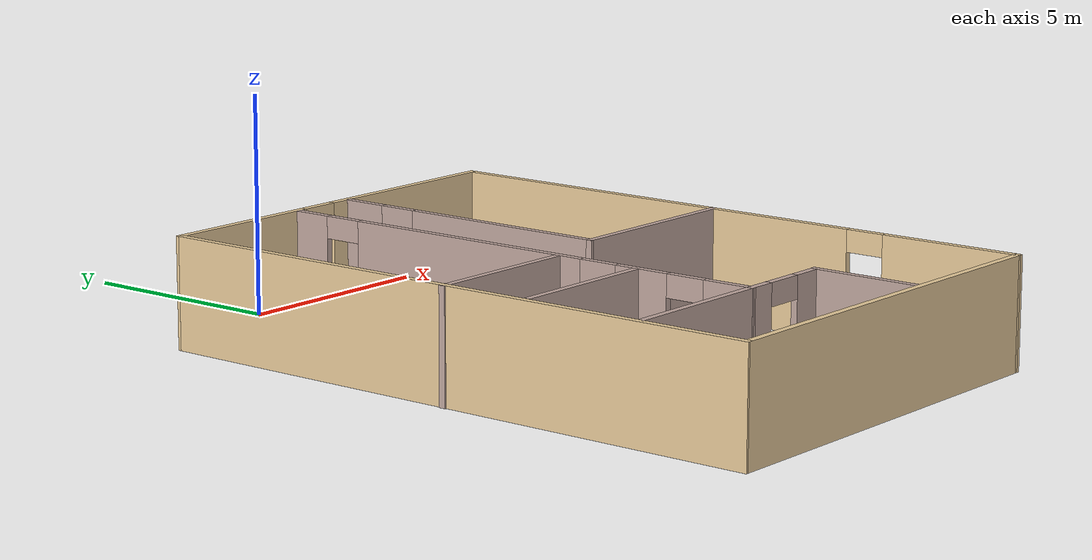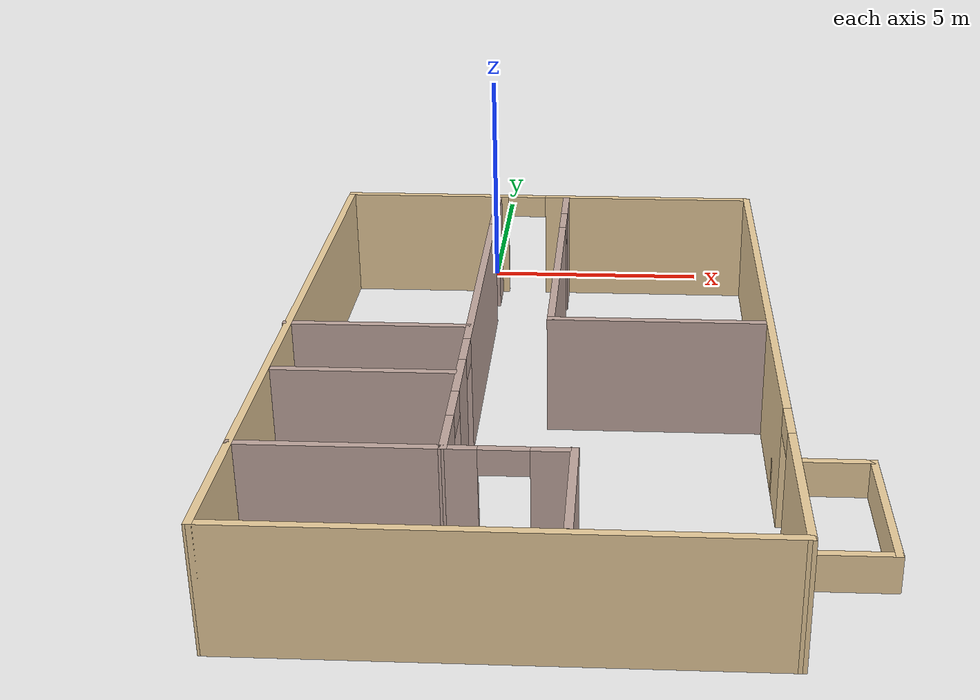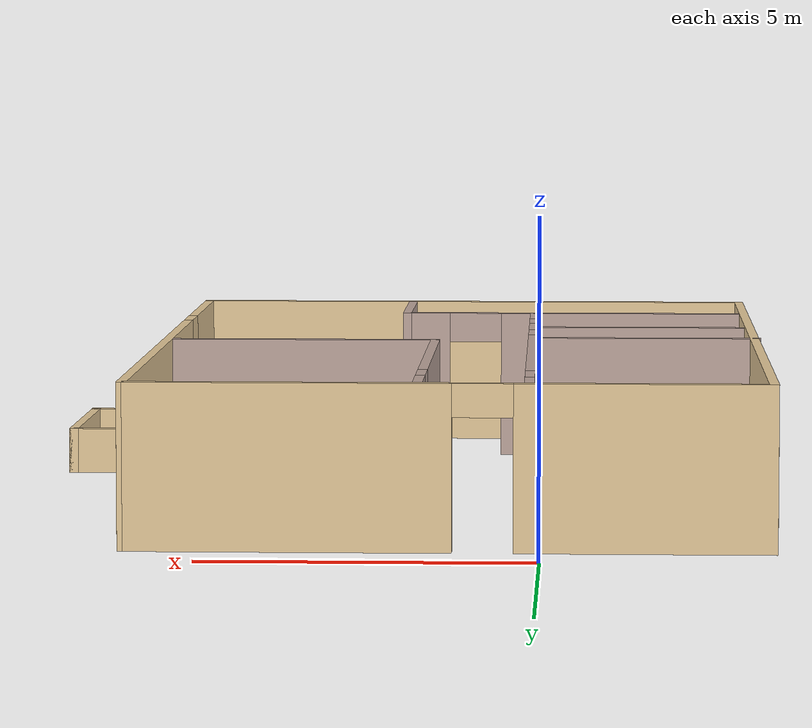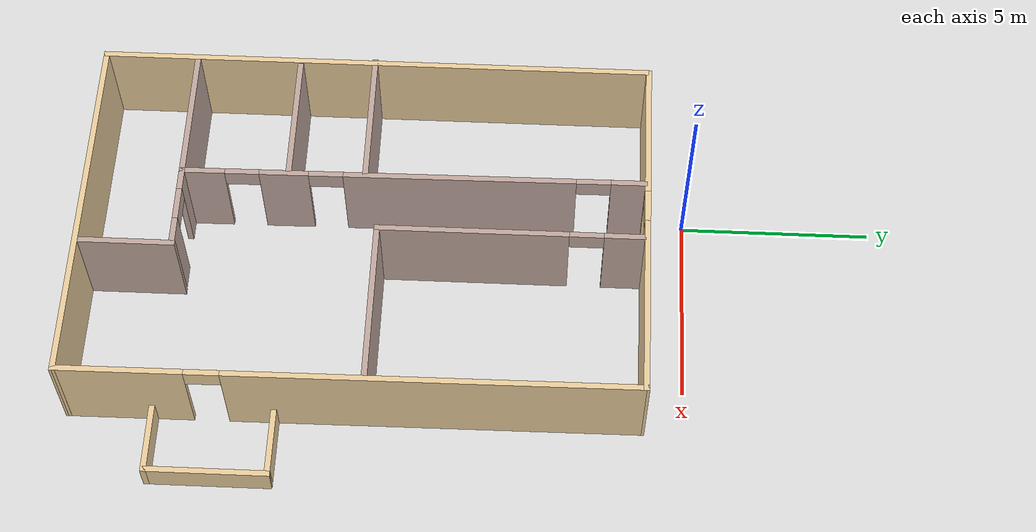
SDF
<?xml version='1.0'?>
<sdf version='1.6'>
  <model name='Building'>
    <pose frame=''>2.29995 -8.39051 0 0 -0 0</pose>
    <link name='Wall_0'>
      <collision name='Wall_0_Collision'>
        <geometry>
          <box>
            <size>14.75 0.15 2.5</size>
          </box>
        </geometry>
        <pose frame=''>0 0 1.25 0 -0 0</pose>
      </collision>
      <visual name='Wall_0_Visual'>
        <pose frame=''>0 0 1.25 0 -0 0</pose>
        <geometry>
          <box>
            <size>14.75 0.15 2.5</size>
          </box>
        </geometry>
        <material>
          <script>
            <uri>file://media/materials/scripts/gazebo.material</uri>
            <name>Gazebo/Grey</name>
          </script>
          <ambient>0.921569 0.807843 0.615686 1</ambient>
        </material>
        <meta>
          <layer>0</layer>
        </meta>
      </visual>
      <pose frame=''>-5.70481 -0.037911 0 0 0 -1.5708</pose>
    </link>
    <link name='Wall_1'>
      <collision name='Wall_1_Collision'>
        <geometry>
          <box>
            <size>9.72533 0.15 2.5</size>
          </box>
        </geometry>
        <pose frame=''>0 0 1.25 0 -0 0</pose>
      </collision>
      <visual name='Wall_1_Visual'>
        <pose frame=''>0 0 1.25 0 -0 0</pose>
        <geometry>
          <box>
            <size>9.72533 0.15 2.5</size>
          </box>
        </geometry>
        <material>
          <script>
            <uri>file://media/materials/scripts/gazebo.material</uri>
            <name>Gazebo/Grey</name>
          </script>
          <ambient>0.921569 0.807843 0.615686 1</ambient>
        </material>
        <meta>
          <layer>0</layer>
        </meta>
      </visual>
      <pose frame=''>-0.870929 -7.33745 0 0 -0 9.7e-05</pose>
    </link>
    <link name='Wall_10'>
      <collision name='Wall_10_Collision'>
        <geometry>
          <box>
            <size>3.75 0.15 2.5</size>
          </box>
        </geometry>
        <pose frame=''>0 0 1.25 0 -0 0</pose>
      </collision>
      <visual name='Wall_10_Visual'>
        <pose frame=''>0 0 1.25 0 -0 0</pose>
        <geometry>
          <box>
            <size>3.75 0.15 2.5</size>
          </box>
        </geometry>
        <material>
          <script>
            <uri>file://media/materials/scripts/gazebo.material</uri>
            <name>Gazebo/Grey</name>
          </script>
          <ambient>0.760784 0.662745 0.627451 1</ambient>
        </material>
        <meta>
          <layer>0</layer>
        </meta>
      </visual>
      <pose frame=''>-3.88937 -4.84832 0 0 -0 3.14159</pose>
    </link>
    <link name='Wall_14'>
      <collision name='Wall_14_Collision'>
        <geometry>
          <box>
            <size>2.5 0.15 2.5</size>
          </box>
        </geometry>
        <pose frame=''>0 0 1.25 0 -0 0</pose>
      </collision>
      <visual name='Wall_14_Visual'>
        <pose frame=''>0 0 1.25 0 -0 0</pose>
        <geometry>
          <box>
            <size>2.5 0.15 2.5</size>
          </box>
        </geometry>
        <material>
          <script>
            <uri>file://media/materials/scripts/gazebo.material</uri>
            <name>Gazebo/Grey</name>
          </script>
          <ambient>0.760784 0.662745 0.627451 1</ambient>
        </material>
        <meta>
          <layer>0</layer>
        </meta>
      </visual>
      <pose frame=''>0.19415 -6.01042 0 0 0 -1.5708</pose>
    </link>
    <link name='Wall_16'>
      <collision name='Wall_16_Collision'>
        <geometry>
          <box>
            <size>4.5 0.15 2.5</size>
          </box>
        </geometry>
        <pose frame=''>0 0 1.25 0 -0 0</pose>
      </collision>
      <visual name='Wall_16_Visual'>
        <pose frame=''>0 0 1.25 0 -0 0</pose>
        <geometry>
          <box>
            <size>4.5 0.15 2.5</size>
          </box>
        </geometry>
        <material>
          <script>
            <uri>file://media/materials/scripts/gazebo.material</uri>
            <name>Gazebo/Grey</name>
          </script>
          <ambient>0.760784 0.662745 0.627451 1</ambient>
        </material>
        <meta>
          <layer>0</layer>
        </meta>
      </visual>
      <pose frame=''>1.67785 0.374679 0 0 -0 0</pose>
    </link>
    <link name='Wall_18'>
      <collision name='Wall_18_Collision'>
        <geometry>
          <box>
            <size>3.5 0.15 2.5</size>
          </box>
        </geometry>
        <pose frame=''>0 0 1.25 0 -0 0</pose>
      </collision>
      <visual name='Wall_18_Visual'>
        <pose frame=''>0 0 1.25 0 -0 0</pose>
        <geometry>
          <box>
            <size>3.5 0.15 2.5</size>
          </box>
        </geometry>
        <material>
          <script>
            <uri>file://media/materials/scripts/gazebo.material</uri>
            <name>Gazebo/Grey</name>
          </script>
          <ambient>0.760784 0.662745 0.627451 1</ambient>
        </material>
        <meta>
          <layer>0</layer>
        </meta>
      </visual>
      <pose frame=''>-3.86495 -2.05872 0 0 -0 3.14159</pose>
    </link>
    <link name='Wall_20'>
      <collision name='Wall_20_Collision'>
        <geometry>
          <box>
            <size>3.75 0.15 2.5</size>
          </box>
        </geometry>
        <pose frame=''>0 0 1.25 0 -0 0</pose>
      </collision>
      <visual name='Wall_20_Visual'>
        <pose frame=''>0 0 1.25 0 -0 0</pose>
        <geometry>
          <box>
            <size>3.75 0.15 2.5</size>
          </box>
        </geometry>
        <material>
          <script>
            <uri>file://media/materials/scripts/gazebo.material</uri>
            <name>Gazebo/Grey</name>
          </script>
          <ambient>0.760784 0.662745 0.627451 1</ambient>
        </material>
        <meta>
          <layer>0</layer>
        </meta>
      </visual>
      <pose frame=''>-3.93705 -0.048521 0 0 -0 3.14159</pose>
    </link>
    <link name='Wall_22'>
      <pose frame=''>-0.991697 -4.84832 0 0 -0 0</pose>
      <visual name='Wall_22_Visual_0'>
        <pose frame=''>-0.794379 0 1.25 0 -0 0</pose>
        <geometry>
          <box>
            <size>0.661242 0.15 2.5</size>
          </box>
        </geometry>
        <material>
          <script>
            <uri>file://media/materials/scripts/gazebo.material</uri>
            <name>Gazebo/Grey</name>
          </script>
          <ambient>0.760784 0.662745 0.627451 1</ambient>
        </material>
        <meta>
          <layer>0</layer>
        </meta>
      </visual>
      <collision name='Wall_22_Collision_0'>
        <geometry>
          <box>
            <size>0.661242 0.15 2.5</size>
          </box>
        </geometry>
        <pose frame=''>-0.794379 0 1.25 0 -0 0</pose>
      </collision>
      <visual name='Wall_22_Visual_1'>
        <pose frame=''>0.780621 0 1.25 0 -0 0</pose>
        <geometry>
          <box>
            <size>0.688758 0.15 2.5</size>
          </box>
        </geometry>
        <material>
          <script>
            <uri>file://media/materials/scripts/gazebo.material</uri>
            <name>Gazebo/Grey</name>
          </script>
          <ambient>0.760784 0.662745 0.627451 1</ambient>
        </material>
        <meta>
          <layer>0</layer>
        </meta>
      </visual>
      <collision name='Wall_22_Collision_1'>
        <geometry>
          <box>
            <size>0.688758 0.15 2.5</size>
          </box>
        </geometry>
        <pose frame=''>0.780621 0 1.25 0 -0 0</pose>
      </collision>
      <visual name='Wall_22_Visual_2'>
        <pose frame=''>-0.013758 0 2.25 0 -0 0</pose>
        <geometry>
          <box>
            <size>0.9 0.15 0.5</size>
          </box>
        </geometry>
        <material>
          <script>
            <uri>file://media/materials/scripts/gazebo.material</uri>
            <name>Gazebo/Grey</name>
          </script>
          <ambient>0.760784 0.662745 0.627451 1</ambient>
        </material>
        <meta>
          <layer>0</layer>
        </meta>
      </visual>
      <collision name='Wall_22_Collision_2'>
        <geometry>
          <box>
            <size>0.9 0.15 0.5</size>
          </box>
        </geometry>
        <pose frame=''>-0.013758 0 2.25 0 -0 0</pose>
      </collision>
    </link>
    <link name='Wall_24'>
      <pose frame=''>-0.49715 3.79968 0 0 -0 1.5708</pose>
      <visual name='Wall_24_Visual_0'>
        <pose frame=''>-0.98817 0 1.25 0 -0 0</pose>
        <geometry>
          <box>
            <size>5.02366 0.15 2.5</size>
          </box>
        </geometry>
        <material>
          <script>
            <uri>file://media/materials/scripts/gazebo.material</uri>
            <name>Gazebo/Grey</name>
          </script>
          <ambient>0.760784 0.662745 0.627451 1</ambient>
        </material>
        <meta>
          <layer>0</layer>
        </meta>
      </visual>
      <collision name='Wall_24_Collision_0'>
        <geometry>
          <box>
            <size>5.02366 0.15 2.5</size>
          </box>
        </geometry>
        <pose frame=''>-0.98817 0 1.25 0 -0 0</pose>
      </collision>
      <visual name='Wall_24_Visual_1'>
        <pose frame=''>2.96183 0 1.25 0 -0 0</pose>
        <geometry>
          <box>
            <size>1.07634 0.15 2.5</size>
          </box>
        </geometry>
        <material>
          <script>
            <uri>file://media/materials/scripts/gazebo.material</uri>
            <name>Gazebo/Grey</name>
          </script>
          <ambient>0.760784 0.662745 0.627451 1</ambient>
        </material>
        <meta>
          <layer>0</layer>
        </meta>
      </visual>
      <collision name='Wall_24_Collision_1'>
        <geometry>
          <box>
            <size>1.07634 0.15 2.5</size>
          </box>
        </geometry>
        <pose frame=''>2.96183 0 1.25 0 -0 0</pose>
      </collision>
      <visual name='Wall_24_Visual_2'>
        <pose frame=''>1.97366 0 2.25 0 -0 0</pose>
        <geometry>
          <box>
            <size>0.9 0.15 0.5</size>
          </box>
        </geometry>
        <material>
          <script>
            <uri>file://media/materials/scripts/gazebo.material</uri>
            <name>Gazebo/Grey</name>
          </script>
          <ambient>0.760784 0.662745 0.627451 1</ambient>
        </material>
        <meta>
          <layer>0</layer>
        </meta>
      </visual>
      <collision name='Wall_24_Collision_2'>
        <geometry>
          <box>
            <size>0.9 0.15 0.5</size>
          </box>
        </geometry>
        <pose frame=''>1.97366 0 2.25 0 -0 0</pose>
      </collision>
    </link>
    <link name='Wall_29'>
      <pose frame=''>3.87687 0.000265 0 0 0 -1.56537</pose>
      <visual name='Wall_29_Visual_0'>
        <pose frame=''>-2.10776 0 1.25 0 -0 0</pose>
        <geometry>
          <box>
            <size>10.6092 0.15 2.5</size>
          </box>
        </geometry>
        <material>
          <script>
            <uri>file://media/materials/scripts/gazebo.material</uri>
            <name>Gazebo/Grey</name>
          </script>
          <ambient>0.921569 0.807843 0.615686 1</ambient>
        </material>
        <meta>
          <layer>0</layer>
        </meta>
      </visual>
      <collision name='Wall_29_Collision_0'>
        <geometry>
          <box>
            <size>10.6092 0.15 2.5</size>
          </box>
        </geometry>
        <pose frame=''>-2.10776 0 1.25 0 -0 0</pose>
      </collision>
      <visual name='Wall_29_Visual_1'>
        <pose frame=''>5.75459 0 1.25 0 -0 0</pose>
        <geometry>
          <box>
            <size>3.31552 0.15 2.5</size>
          </box>
        </geometry>
        <material>
          <script>
            <uri>file://media/materials/scripts/gazebo.material</uri>
            <name>Gazebo/Grey</name>
          </script>
          <ambient>0.921569 0.807843 0.615686 1</ambient>
        </material>
        <meta>
          <layer>0</layer>
        </meta>
      </visual>
      <collision name='Wall_29_Collision_1'>
        <geometry>
          <box>
            <size>3.31552 0.15 2.5</size>
          </box>
        </geometry>
        <pose frame=''>5.75459 0 1.25 0 -0 0</pose>
      </collision>
      <visual name='Wall_29_Visual_2'>
        <pose frame=''>3.64683 0 2.25 0 -0 0</pose>
        <geometry>
          <box>
            <size>0.9 0.15 0.5</size>
          </box>
        </geometry>
        <material>
          <script>
            <uri>file://media/materials/scripts/gazebo.material</uri>
            <name>Gazebo/Grey</name>
          </script>
          <ambient>0.921569 0.807843 0.615686 1</ambient>
        </material>
        <meta>
          <layer>0</layer>
        </meta>
      </visual>
      <collision name='Wall_29_Collision_2'>
        <geometry>
          <box>
            <size>0.9 0.15 0.5</size>
          </box>
        </geometry>
        <pose frame=''>3.64683 0 2.25 0 -0 0</pose>
      </collision>
    </link>
    <link name='Wall_31'>
      <collision name='Wall_31_Collision'>
        <geometry>
          <box>
            <size>2 0.15 0.75</size>
          </box>
        </geometry>
        <pose frame=''>0 0 0.375 0 -0 0</pose>
      </collision>
      <visual name='Wall_31_Visual'>
        <pose frame=''>0 0 0.375 0 -0 0</pose>
        <geometry>
          <box>
            <size>2 0.15 0.75</size>
          </box>
        </geometry>
        <material>
          <script>
            <uri>file://media/materials/scripts/gazebo.material</uri>
            <name>Gazebo/Grey</name>
          </script>
          <ambient>0.921569 0.807843 0.615686 1</ambient>
        </material>
        <meta>
          <layer>0</layer>
        </meta>
      </visual>
      <pose frame=''>4.81205 -2.00149 0 0 -0 0</pose>
    </link>
    <link name='Wall_32'>
      <collision name='Wall_32_Collision'>
        <geometry>
          <box>
            <size>3.25 0.15 0.75</size>
          </box>
        </geometry>
        <pose frame=''>0 0 0.375 0 -0 0</pose>
      </collision>
      <visual name='Wall_32_Visual'>
        <pose frame=''>0 0 0.375 0 -0 0</pose>
        <geometry>
          <box>
            <size>3.25 0.15 0.75</size>
          </box>
        </geometry>
        <material>
          <script>
            <uri>file://media/materials/scripts/gazebo.material</uri>
            <name>Gazebo/Grey</name>
          </script>
          <ambient>0.921569 0.807843 0.615686 1</ambient>
        </material>
        <meta>
          <layer>0</layer>
        </meta>
      </visual>
      <pose frame=''>5.73705 -3.55149 0 0 0 -1.5708</pose>
    </link>
    <link name='Wall_33'>
      <collision name='Wall_33_Collision'>
        <geometry>
          <box>
            <size>2 0.15 0.75</size>
          </box>
        </geometry>
        <pose frame=''>0 0 0.375 0 -0 0</pose>
      </collision>
      <visual name='Wall_33_Visual'>
        <pose frame=''>0 0 0.375 0 -0 0</pose>
        <geometry>
          <box>
            <size>2 0.15 0.75</size>
          </box>
        </geometry>
        <material>
          <script>
            <uri>file://media/materials/scripts/gazebo.material</uri>
            <name>Gazebo/Grey</name>
          </script>
          <ambient>0.921569 0.807843 0.615686 1</ambient>
        </material>
        <meta>
          <layer>0</layer>
        </meta>
      </visual>
      <pose frame=''>4.81205 -5.10149 0 0 -0 3.14159</pose>
    </link>
    <link name='Wall_7'>
      <pose frame=''>-0.93145 7.33751 0 0 -0 3.14159</pose>
      <visual name='Wall_7_Visual_0'>
        <pose frame=''>-2.38427 0 1.25 0 -0 0</pose>
        <geometry>
          <box>
            <size>4.91846 0.15 2.5</size>
          </box>
        </geometry>
        <material>
          <script>
            <uri>file://media/materials/scripts/gazebo.material</uri>
            <name>Gazebo/Grey</name>
          </script>
          <ambient>0.921569 0.807843 0.615686 1</ambient>
        </material>
        <meta>
          <layer>0</layer>
        </meta>
      </visual>
      <collision name='Wall_7_Collision_0'>
        <geometry>
          <box>
            <size>4.91846 0.15 2.5</size>
          </box>
        </geometry>
        <pose frame=''>-2.38427 0 1.25 0 -0 0</pose>
      </collision>
      <visual name='Wall_7_Visual_1'>
        <pose frame=''>2.90923 0 1.25 0 -0 0</pose>
        <geometry>
          <box>
            <size>3.86854 0.15 2.5</size>
          </box>
        </geometry>
        <material>
          <script>
            <uri>file://media/materials/scripts/gazebo.material</uri>
            <name>Gazebo/Grey</name>
          </script>
          <ambient>0.921569 0.807843 0.615686 1</ambient>
        </material>
        <meta>
          <layer>0</layer>
        </meta>
      </visual>
      <collision name='Wall_7_Collision_1'>
        <geometry>
          <box>
            <size>3.86854 0.15 2.5</size>
          </box>
        </geometry>
        <pose frame=''>2.90923 0 1.25 0 -0 0</pose>
      </collision>
      <visual name='Wall_7_Visual_2'>
        <pose frame=''>0.524956 0 2.25 0 -0 0</pose>
        <geometry>
          <box>
            <size>0.9 0.15 0.5</size>
          </box>
        </geometry>
        <material>
          <script>
            <uri>file://media/materials/scripts/gazebo.material</uri>
            <name>Gazebo/Grey</name>
          </script>
          <ambient>0.921569 0.807843 0.615686 1</ambient>
        </material>
        <meta>
          <layer>0</layer>
        </meta>
      </visual>
      <collision name='Wall_7_Collision_2'>
        <geometry>
          <box>
            <size>0.9 0.15 0.5</size>
          </box>
        </geometry>
        <pose frame=''>0.524956 0 2.25 0 -0 0</pose>
      </collision>
    </link>
    <link name='Wall_9'>
      <pose frame=''>-2.08937 1.20168 0 0 0 -1.56292</pose>
      <visual name='Wall_9_Visual_0'>
        <pose frame=''>-5.6461 0 1.25 0 -0 0</pose>
        <geometry>
          <box>
            <size>0.957792 0.15 2.5</size>
          </box>
        </geometry>
        <material>
          <script>
            <uri>file://media/materials/scripts/gazebo.material</uri>
            <name>Gazebo/Grey</name>
          </script>
          <ambient>0.760784 0.662745 0.627451 1</ambient>
        </material>
        <meta>
          <layer>0</layer>
        </meta>
      </visual>
      <collision name='Wall_9_Collision_0'>
        <geometry>
          <box>
            <size>0.957792 0.15 2.5</size>
          </box>
        </geometry>
        <pose frame=''>-5.6461 0 1.25 0 -0 0</pose>
      </collision>
      <visual name='Wall_9_Visual_1'>
        <pose frame=''>-1.21814 0 1.25 0 -0 0</pose>
        <geometry>
          <box>
            <size>6.09813 0.15 2.5</size>
          </box>
        </geometry>
        <material>
          <script>
            <uri>file://media/materials/scripts/gazebo.material</uri>
            <name>Gazebo/Grey</name>
          </script>
          <ambient>0.760784 0.662745 0.627451 1</ambient>
        </material>
        <meta>
          <layer>0</layer>
        </meta>
      </visual>
      <collision name='Wall_9_Collision_1'>
        <geometry>
          <box>
            <size>6.09813 0.15 2.5</size>
          </box>
        </geometry>
        <pose frame=''>-1.21814 0 1.25 0 -0 0</pose>
      </collision>
      <visual name='Wall_9_Visual_2'>
        <pose frame=''>3.37888 0 1.25 0 -0 0</pose>
        <geometry>
          <box>
            <size>1.29592 0.15 2.5</size>
          </box>
        </geometry>
        <material>
          <script>
            <uri>file://media/materials/scripts/gazebo.material</uri>
            <name>Gazebo/Grey</name>
          </script>
          <ambient>0.760784 0.662745 0.627451 1</ambient>
        </material>
        <meta>
          <layer>0</layer>
        </meta>
      </visual>
      <collision name='Wall_9_Collision_2'>
        <geometry>
          <box>
            <size>1.29592 0.15 2.5</size>
          </box>
        </geometry>
        <pose frame=''>3.37888 0 1.25 0 -0 0</pose>
      </collision>
      <visual name='Wall_9_Visual_3'>
        <pose frame=''>5.52592 0 1.25 0 -0 0</pose>
        <geometry>
          <box>
            <size>1.19816 0.15 2.5</size>
          </box>
        </geometry>
        <material>
          <script>
            <uri>file://media/materials/scripts/gazebo.material</uri>
            <name>Gazebo/Grey</name>
          </script>
          <ambient>0.760784 0.662745 0.627451 1</ambient>
        </material>
        <meta>
          <layer>0</layer>
        </meta>
      </visual>
      <collision name='Wall_9_Collision_3'>
        <geometry>
          <box>
            <size>1.19816 0.15 2.5</size>
          </box>
        </geometry>
        <pose frame=''>5.52592 0 1.25 0 -0 0</pose>
      </collision>
      <visual name='Wall_9_Visual_4'>
        <pose frame=''>-4.71721 0 2.25 0 -0 0</pose>
        <geometry>
          <box>
            <size>0.9 0.15 0.5</size>
          </box>
        </geometry>
        <material>
          <script>
            <uri>file://media/materials/scripts/gazebo.material</uri>
            <name>Gazebo/Grey</name>
          </script>
          <ambient>0.760784 0.662745 0.627451 1</ambient>
        </material>
        <meta>
          <layer>0</layer>
        </meta>
      </visual>
      <collision name='Wall_9_Collision_4'>
        <geometry>
          <box>
            <size>0.9 0.15 0.5</size>
          </box>
        </geometry>
        <pose frame=''>-4.71721 0 2.25 0 -0 0</pose>
      </collision>
      <visual name='Wall_9_Visual_5'>
        <pose frame=''>2.28092 0 2.25 0 -0 0</pose>
        <geometry>
          <box>
            <size>0.9 0.15 0.5</size>
          </box>
        </geometry>
        <material>
          <script>
            <uri>file://media/materials/scripts/gazebo.material</uri>
            <name>Gazebo/Grey</name>
          </script>
          <ambient>0.760784 0.662745 0.627451 1</ambient>
        </material>
        <meta>
          <layer>0</layer>
        </meta>
      </visual>
      <collision name='Wall_9_Collision_5'>
        <geometry>
          <box>
            <size>0.9 0.15 0.5</size>
          </box>
        </geometry>
        <pose frame=''>2.28092 0 2.25 0 -0 0</pose>
      </collision>
      <visual name='Wall_9_Visual_6'>
        <pose frame=''>4.47684 0 2.25 0 -0 0</pose>
        <geometry>
          <box>
            <size>0.9 0.15 0.5</size>
          </box>
        </geometry>
        <material>
          <script>
            <uri>file://media/materials/scripts/gazebo.material</uri>
            <name>Gazebo/Grey</name>
          </script>
          <ambient>0.760784 0.662745 0.627451 1</ambient>
        </material>
        <meta>
          <layer>0</layer>
        </meta>
      </visual>
      <collision name='Wall_9_Collision_6'>
        <geometry>
          <box>
            <size>0.9 0.15 0.5</size>
          </box>
        </geometry>
        <pose frame=''>4.47684 0 2.25 0 -0 0</pose>
      </collision>
    </link>
    <static>1</static>
  </model>
</sdf>
